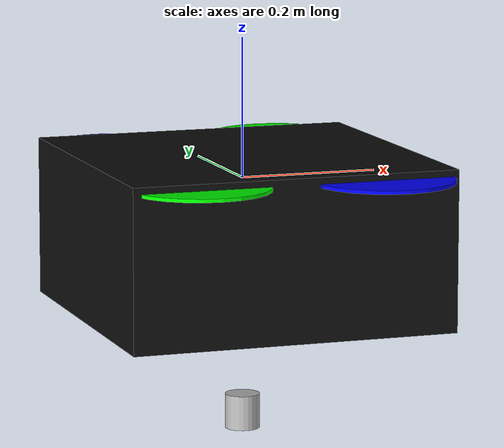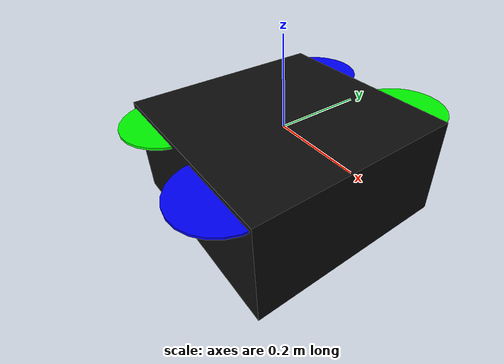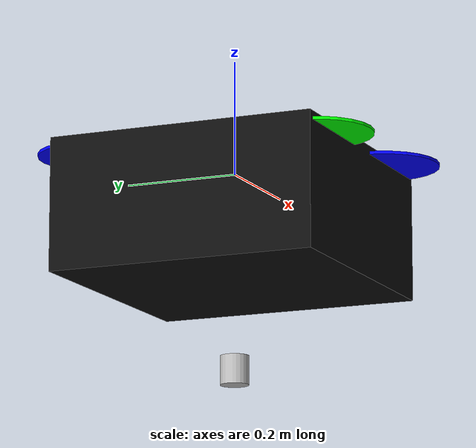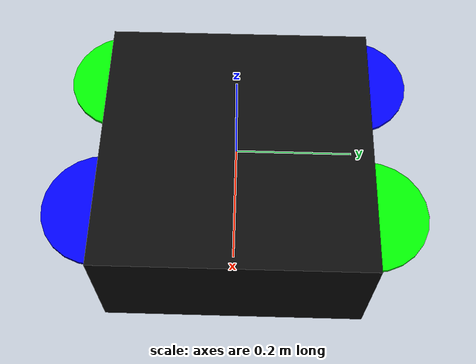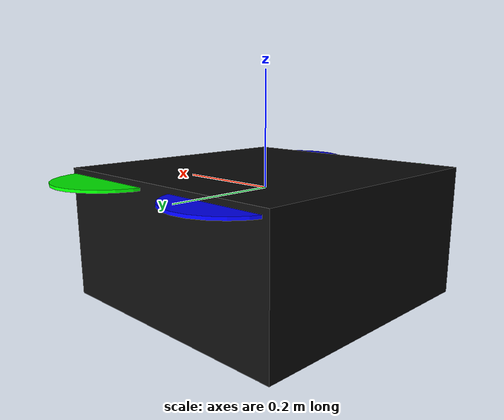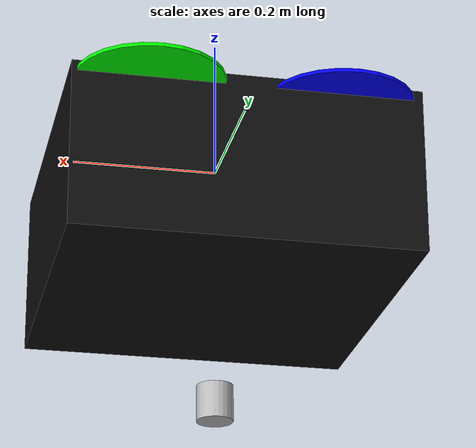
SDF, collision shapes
<?xml version='1.0'?>
<sdf version="1.9">
  <model name="iris_with_gimbal">
    <include>
      <uri>model://iris_with_standoffs2</uri>
    </include>

    <!-- plugins -->
    <plugin filename="gz-sim-joint-state-publisher-system"
      name="gz::sim::systems::JointStatePublisher">
    </plugin>
    <plugin filename="gz-sim-lift-drag-system"
        name="gz::sim::systems::LiftDrag">
      <a0>0.3</a0>
      <alpha_stall>1.4</alpha_stall>
      <cla>4.2500</cla>
      <cda>0.10</cda>
      <cma>0.0</cma>
      <cla_stall>-0.025</cla_stall>
      <cda_stall>0.0</cda_stall>
      <cma_stall>0.0</cma_stall>
      <area>0.002</area>
      <air_density>1.2041</air_density>
      <cp>0.084 0 0</cp>
      <forward>0 1 0</forward>
      <upward>0 0 1</upward>
      <link_name>iris_with_standoffs::rotor_0</link_name>
    </plugin>
    <plugin filename="gz-sim-lift-drag-system"
        name="gz::sim::systems::LiftDrag">
      <a0>0.3</a0>
      <alpha_stall>1.4</alpha_stall>
      <cla>4.2500</cla>
      <cda>0.10</cda>
      <cma>0.0</cma>
      <cla_stall>-0.025</cla_stall>
      <cda_stall>0.0</cda_stall>
      <cma_stall>0.0</cma_stall>
      <area>0.002</area>
      <air_density>1.2041</air_density>
      <cp>-0.084 0 0</cp>
      <forward>0 -1 0</forward>
      <upward>0 0 1</upward>
      <link_name>iris_with_standoffs::rotor_0</link_name>
    </plugin>

    <plugin filename="gz-sim-lift-drag-system"
        name="gz::sim::systems::LiftDrag">
      <a0>0.3</a0>
      <alpha_stall>1.4</alpha_stall>
      <cla>4.2500</cla>
      <cda>0.10</cda>
      <cma>0.0</cma>
      <cla_stall>-0.025</cla_stall>
      <cda_stall>0.0</cda_stall>
      <cma_stall>0.0</cma_stall>
      <area>0.002</area>
      <air_density>1.2041</air_density>
      <cp>0.084 0 0</cp>
      <forward>0 1 0</forward>
      <upward>0 0 1</upward>
      <link_name>iris_with_standoffs::rotor_1</link_name>
    </plugin>
    <plugin filename="gz-sim-lift-drag-system"
        name="gz::sim::systems::LiftDrag">
      <a0>0.3</a0>
      <alpha_stall>1.4</alpha_stall>
      <cla>4.2500</cla>
      <cda>0.10</cda>
      <cma>0.0</cma>
      <cla_stall>-0.025</cla_stall>
      <cda_stall>0.0</cda_stall>
      <cma_stall>0.0</cma_stall>
      <area>0.002</area>
      <air_density>1.2041</air_density>
      <cp>-0.084 0 0</cp>
      <forward>0 -1 0</forward>
      <upward>0 0 1</upward>
      <link_name>iris_with_standoffs::rotor_1</link_name>
    </plugin>

    <plugin filename="gz-sim-lift-drag-system"
        name="gz::sim::systems::LiftDrag">
      <a0>0.3</a0>
      <alpha_stall>1.4</alpha_stall>
      <cla>4.2500</cla>
      <cda>0.10</cda>
      <cma>0.0</cma>
      <cla_stall>-0.025</cla_stall>
      <cda_stall>0.0</cda_stall>
      <cma_stall>0.0</cma_stall>
      <area>0.002</area>
      <air_density>1.2041</air_density>
      <cp>0.084 0 0</cp>
      <forward>0 -1 0</forward>
      <upward>0 0 1</upward>
      <link_name>iris_with_standoffs::rotor_2</link_name>
    </plugin>
    <plugin filename="gz-sim-lift-drag-system"
        name="gz::sim::systems::LiftDrag">
      <a0>0.3</a0>
      <alpha_stall>1.4</alpha_stall>
      <cla>4.2500</cla>
      <cda>0.10</cda>
      <cma>0.0</cma>
      <cla_stall>-0.025</cla_stall>
      <cda_stall>0.0</cda_stall>
      <cma_stall>0.0</cma_stall>
      <area>0.002</area>
      <air_density>1.2041</air_density>
      <cp>-0.084 0 0</cp>
      <forward>0 1 0</forward>
      <upward>0 0 1</upward>
      <link_name>iris_with_standoffs::rotor_2</link_name>
    </plugin>

    <plugin filename="gz-sim-lift-drag-system"
        name="gz::sim::systems::LiftDrag">
      <a0>0.3</a0>
      <alpha_stall>1.4</alpha_stall>
      <cla>4.2500</cla>
      <cda>0.10</cda>
      <cma>0.0</cma>
      <cla_stall>-0.025</cla_stall>
      <cda_stall>0.0</cda_stall>
      <cma_stall>0.0</cma_stall>
      <area>0.002</area>
      <air_density>1.2041</air_density>
      <cp>0.084 0 0</cp>
      <forward>0 -1 0</forward>
      <upward>0 0 1</upward>
      <link_name>iris_with_standoffs::rotor_3</link_name>
    </plugin>
    <plugin filename="gz-sim-lift-drag-system"
        name="gz::sim::systems::LiftDrag">
      <a0>0.3</a0>
      <alpha_stall>1.4</alpha_stall>
      <cla>4.2500</cla>
      <cda>0.10</cda>
      <cma>0.0</cma>
      <cla_stall>-0.025</cla_stall>
      <cda_stall>0.0</cda_stall>
      <cma_stall>0.0</cma_stall>
      <area>0.002</area>
      <air_density>1.2041</air_density>
      <cp>-0.084 0 0</cp>
      <forward>0 1 0</forward>
      <upward>0 0 1</upward>
      <link_name>iris_with_standoffs::rotor_3</link_name>
    </plugin>

    <plugin filename="gz-sim-apply-joint-force-system"
      name="gz::sim::systems::ApplyJointForce">
      <joint_name>iris_with_standoffs::rotor_0_joint</joint_name>
    </plugin>
    <plugin filename="gz-sim-apply-joint-force-system"
      name="gz::sim::systems::ApplyJointForce">
      <joint_name>iris_with_standoffs::rotor_1_joint</joint_name>
    </plugin>
    <plugin filename="gz-sim-apply-joint-force-system"
      name="gz::sim::systems::ApplyJointForce">
      <joint_name>iris_with_standoffs::rotor_2_joint</joint_name>
    </plugin>
    <plugin filename="gz-sim-apply-joint-force-system"
      name="gz::sim::systems::ApplyJointForce">
      <joint_name>iris_with_standoffs::rotor_3_joint</joint_name>
    </plugin>

    <plugin name="ArduPilotPlugin"
      filename="ArduPilotPlugin">
      <!-- Port settings -->
      <fdm_addr>127.0.0.1</fdm_addr>
      <fdm_port_in>9002</fdm_port_in>
      <connectionTimeoutMaxCount>5</connectionTimeoutMaxCount>
      <lock_step>1</lock_step>

      <!-- Frame conventions
        Require by ArduPilot: change model and gazebo from XYZ to XY-Z coordinates
      -->
      <modelXYZToAirplaneXForwardZDown degrees="true">0 0 0 180 0 0</modelXYZToAirplaneXForwardZDown>
      <gazeboXYZToNED degrees="true">0 0 0 180 0 90</gazeboXYZToNED>

      <!-- Sensors -->
      <imuName>iris_with_standoffs::imu_link::imu_sensor</imuName>

      <!--
          incoming control command [0, 1]
          so offset it by 0 to get [0, 1]
          and divide max target by 1.
          offset = 0
          multiplier = 838 max rpm / 1 = 838
        -->
      <control channel="0">
        <jointName>iris_with_standoffs::rotor_0_joint</jointName>
        <useForce>1</useForce>
        <multiplier>838</multiplier>
        <offset>0</offset>
        <servo_min>1100</servo_min>
        <servo_max>1900</servo_max>
        <type>VELOCITY</type>
        <p_gain>0.20</p_gain>
        <i_gain>0</i_gain>
        <d_gain>0</d_gain>
        <i_max>0</i_max>
        <i_min>0</i_min>
        <cmd_max>2.5</cmd_max>
        <cmd_min>-2.5</cmd_min>
        <controlVelocitySlowdownSim>1</controlVelocitySlowdownSim>
      </control>

      <control channel="1">
        <jointName>iris_with_standoffs::rotor_1_joint</jointName>
        <useForce>1</useForce>
        <multiplier>838</multiplier>
        <offset>0</offset>
        <servo_min>1100</servo_min>
        <servo_max>1900</servo_max>
        <type>VELOCITY</type>
        <p_gain>0.20</p_gain>
        <i_gain>0</i_gain>
        <d_gain>0</d_gain>
        <i_max>0</i_max>
        <i_min>0</i_min>
        <cmd_max>2.5</cmd_max>
        <cmd_min>-2.5</cmd_min>
        <controlVelocitySlowdownSim>1</controlVelocitySlowdownSim>
      </control>

      <control channel="2">
        <jointName>iris_with_standoffs::rotor_2_joint</jointName>
        <useForce>1</useForce>
        <multiplier>-838</multiplier>
        <offset>0</offset>
        <servo_min>1100</servo_min>
        <servo_max>1900</servo_max>
        <type>VELOCITY</type>
        <p_gain>0.20</p_gain>
        <i_gain>0</i_gain>
        <d_gain>0</d_gain>
        <i_max>0</i_max>
        <i_min>0</i_min>
        <cmd_max>2.5</cmd_max>
        <cmd_min>-2.5</cmd_min>
        <controlVelocitySlowdownSim>1</controlVelocitySlowdownSim>
      </control>

      <control channel="3">
        <jointName>iris_with_standoffs::rotor_3_joint</jointName>
        <useForce>1</useForce>
        <multiplier>-838</multiplier>
        <offset>0</offset>
        <servo_min>1100</servo_min>
        <servo_max>1900</servo_max>
        <type>VELOCITY</type>
        <p_gain>0.20</p_gain>
        <i_gain>0</i_gain>
        <d_gain>0</d_gain>
        <i_max>0</i_max>
        <i_min>0</i_min>
        <cmd_max>2.5</cmd_max>
        <cmd_min>-2.5</cmd_min>
        <controlVelocitySlowdownSim>1</controlVelocitySlowdownSim>
      </control>

      <!-- roll range is -30 to +30 deg -->

      <!-- pitch range is -135 to +45 deg -->

    </plugin>

  </model>
</sdf>

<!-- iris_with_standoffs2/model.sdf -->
<sdf version='1.9'>
  <model name='iris_with_standoffs'>
    <pose>0 0 0 0 0 0</pose>
    <link name="camera_link_ball">
      <pose degrees="true">0 0 -0.32 0 180 0</pose>
      <inertial>
        <mass>0.001</mass>
        <inertia>
          <ixx>0.001</ixx>
          <ixy>0</ixy>
          <ixz>0</ixz>
          <iyy>0.001</iyy>
          <iyz>0</iyz>
          <izz>0.001</izz>
        </inertia>
      </inertial>
      <visual name="camera_visual">
        <pose>0 0 0.02 0 0 0</pose>
        <geometry>
          <cylinder>
            <radius>0.025</radius>
            <length>0.050</length>
          </cylinder>
        </geometry>
      </visual>
      <collision name="camera_collision">
        <pose>0 0 0.02 0 0 0</pose>
        <geometry>
          <cylinder>
            <radius>0.025</radius>
            <length>0.050</length>
          </cylinder>
        </geometry>
      </collision>
      <sensor name="camera_stabilized" type="camera">
        <pose degrees="True">0 0 0 0 -90 0</pose>
        <camera>
          <horizontal_fov>1.57</horizontal_fov>
          <image>
            <width>640</width>
            <height>480</height>
          </image>
          <clip>
            <near>0.05</near>
            <far>15000</far>
          </clip>
        </camera>
        <always_on>1</always_on>
        <update_rate>10</update_rate>
        <visualize>1</visualize>
      </sensor>
    </link>
    <link name="camera_link_fixed">
      <pose degrees="true">0 0 -0.32 0 180 0</pose>
      <inertial>
        <mass>0.001</mass>
        <inertia>
          <ixx>0.001</ixx>
          <ixy>0</ixy>
          <ixz>0</ixz>
          <iyy>0.0001</iyy>
          <iyz>0</iyz>
          <izz>0.001</izz>
        </inertia>
      </inertial>
      <collision name="camera_collision">
        <pose>0 0 0.02 0 0 0</pose>
        <geometry>
          <cylinder>
            <radius>0.025</radius>
            <length>0.050</length>
          </cylinder>
        </geometry>
      </collision>
      <sensor name="camera_fixed" type="camera">
        <pose degrees="True">0 0 0 0 -90 0</pose>
        <camera>
          <horizontal_fov>1.57</horizontal_fov>
          <image>
            <width>640</width>
            <height>480</height>
          </image>
          <clip>
            <near>0.05</near>
            <far>15000</far>
          </clip>
        </camera>
        <always_on>1</always_on>
        <update_rate>10</update_rate>
        <visualize>1</visualize>
      </sensor>
    </link>
    <joint name="camera_joint_ball" type="ball">
      <parent>base_link</parent>
      <child>camera_link_ball</child>
      <pose> 0 0 0 0 0 0</pose>
      <axis>
        <xyz>0 1 0</xyz>
        <limit>
          <lower>-1e+16</lower>
          <upper>1e+16</upper>
        </limit>
      </axis>
    </joint>
    <joint name="camera_joint_fixed" type="fixed">
      <parent>base_link</parent>
      <child>camera_link_fixed</child>
      <pose> 0 0 0 0 0 0</pose>
    </joint>
    <link name='base_link'>
      <velocity_decay>
        <linear>0.0</linear>
        <angular>0.0</angular>
      </velocity_decay>
      <inertial>
        <pose>0 0 0 0 0 0</pose>
        <mass>1.5</mass>
        <inertia>
          <ixx>0.008</ixx>
          <ixy>0</ixy>
          <ixz>0</ixz>
          <iyy>0.015</iyy>
          <iyz>0</iyz>
          <izz>0.017</izz>
        </inertia>
      </inertial>
      <collision name='base_collision'>
        <pose>0 0 -0.08 0 0 0</pose>
        <geometry>
          <box>
            <size>0.47 0.47 0.23</size>
          </box>
        </geometry>
        <surface>
          <contact>
            <ode>
              <max_vel>100.0</max_vel>
              <min_depth>0.001</min_depth>
            </ode>
          </contact>
          <friction>
            <ode>
              <mu>100000.0</mu>
              <mu2>100000.0</mu2>
            </ode>
          </friction>
        </surface>
      </collision>
      <visual name='base_visual'>
        <geometry>
          <mesh>
            <uri>model://iris_with_standoffs2/meshes/iris.dae</uri>
          </mesh>
        </geometry>
        <material>
          <ambient>0.05 0.05 0.05</ambient>
          <diffuse>0.05 0.05 0.05</diffuse>
          <specular>1 1 1 1</specular>
          <pbr>
            <metal>
              <metalness>0.5</metalness>
              <roughness>0.5</roughness>
            </metal>
          </pbr>
        </material>
      </visual>

      <visual name='front_left_leg_visual'>
        <pose>0.123 0.22 -0.11 0 0 0</pose>
        <geometry>
          <cylinder>
            <radius>0.005</radius>
            <length>0.17</length>
          </cylinder>
        </geometry>
        <material>
          <ambient>0.05 0.05 0.05</ambient>
          <diffuse>0.05 0.05 0.05</diffuse>
          <specular>0.01 0.01 0.01 1.0</specular>
          <pbr>
            <metal>
              <metalness>0.5</metalness>
              <roughness>0.5</roughness>
            </metal>
          </pbr>
        </material>
      </visual>
      <visual name='front_right_leg_visual'>
        <pose>0.123 -0.22 -0.11 0 0 0</pose>
        <geometry>
          <cylinder>
            <radius>0.005</radius>
            <length>0.17</length>
          </cylinder>
        </geometry>
        <material>
          <ambient>0.05 0.05 0.05</ambient>
          <diffuse>0.05 0.05 0.05</diffuse>
          <specular>0.01 0.01 0.01 1.0</specular>
          <pbr>
            <metal>
              <metalness>0.5</metalness>
              <roughness>0.5</roughness>
            </metal>
          </pbr>
        </material>
      </visual>
      <visual name='rear_left_leg_visual'>
        <pose>-0.140 0.21 -0.11 0 0 0</pose>
        <geometry>
          <cylinder>
            <radius>0.005</radius>
            <length>0.17</length>
          </cylinder>
        </geometry>
        <material>
          <ambient>0.05 0.05 0.05</ambient>
          <diffuse>0.05 0.05 0.05</diffuse>
          <specular>0.01 0.01 0.01 1.0</specular>
          <pbr>
            <metal>
              <metalness>0.5</metalness>
              <roughness>0.5</roughness>
            </metal>
          </pbr>
        </material>
      </visual>
      <visual name='rear_right_leg_visual'>
        <pose>-0.140 -0.21 -0.11 0 0 0</pose>
        <geometry>
          <cylinder>
            <radius>0.005</radius>
            <length>0.17</length>
          </cylinder>
        </geometry>
        <material>
          <ambient>0.05 0.05 0.05</ambient>
          <diffuse>0.05 0.05 0.05</diffuse>
          <specular>0.01 0.01 0.01 1.0</specular>
          <pbr>
            <metal>
              <metalness>0.5</metalness>
              <roughness>0.5</roughness>
            </metal>
          </pbr>
        </material>
      </visual>
    </link>
    <link name='imu_link'>
      <inertial>
        <pose>0 0 0 0 0 0</pose>
        <mass>0.15</mass>
        <inertia>
          <ixx>0.00001</ixx>
          <ixy>0</ixy>
          <ixz>0</ixz>
          <iyy>0.00002</iyy>
          <iyz>0</iyz>
          <izz>0.00002</izz>
        </inertia>
      </inertial>
      <sensor name="imu_sensor" type="imu">
        <pose degrees="true">0 0 0 180 0 0</pose>
        <always_on>1</always_on>
        <update_rate>1000.0</update_rate>
      </sensor>
    </link>
    <joint name='imu_joint' type='revolute'>
      <child>imu_link</child>
      <parent>base_link</parent>
      <axis>
        <xyz>0 0 1</xyz>
        <limit>
          <lower>0</lower>
          <upper>0</upper>
          <effort>0</effort>
          <velocity>0</velocity>
        </limit>
        <dynamics>
          <damping>1.0</damping>
        </dynamics>
      </axis>
    </joint>
    <link name='rotor_0'>
      <pose>0.13 -0.22 0.023 0 0 0</pose>
      <inertial>
        <pose>0 0 0 0 0 0</pose>
        <mass>0.025</mass>
        <inertia>
          <ixx>9.75e-06</ixx>
          <ixy>0</ixy>
          <ixz>0</ixz>
          <iyy>0.000166704</iyy>
          <iyz>0</iyz>
          <izz>0.000167604</izz>
        </inertia>
      </inertial>
      <collision name='rotor_0_collision'>
        <pose>0 0 0 0 0 0</pose>
        <geometry>
          <cylinder>
            <length>0.005</length>
            <radius>0.1</radius>
          </cylinder>
        </geometry>
        <surface>
          <contact>
            <ode/>
          </contact>
          <friction>
            <ode/>
          </friction>
        </surface>
      </collision>
      <visual name='rotor_0_visual'>
        <pose>0 0 0 0 0 0</pose>
        <geometry>
          <mesh>
            <scale>1 1 1</scale>
            <uri>model://iris_with_standoffs2/meshes/iris_prop_ccw.dae</uri>
          </mesh>
        </geometry>
        <material>
          <ambient>0 0 1</ambient>
          <diffuse>0 0 1</diffuse>
          <specular>1 1 1 1</specular>
          <pbr>
            <metal>
              <metalness>0.5</metalness>
              <roughness>0.5</roughness>
            </metal>
          </pbr>
        </material>
      </visual>
      <gravity>1</gravity>
      <velocity_decay/>
      <self_collide>0</self_collide>
    </link>
    <joint name='rotor_0_joint' type='revolute'>
      <child>rotor_0</child>
      <parent>base_link</parent>
      <axis>
        <xyz>0 0 1</xyz>
        <limit>
          <lower>-1e+16</lower>
          <upper>1e+16</upper>
        </limit>
        <dynamics>
          <damping>0.004</damping>
        </dynamics>
      </axis>
      <physics>
        <ode>
          <implicit_spring_damper>1</implicit_spring_damper>
        </ode>
      </physics>
    </joint>
    <link name='rotor_1'>
      <pose>-0.13 0.2 0.023 0 0 0</pose>
      <inertial>
        <pose>0 0 0 0 0 0</pose>
        <mass>0.025</mass>
        <inertia>
          <ixx>9.75e-06</ixx>
          <ixy>0</ixy>
          <ixz>0</ixz>
          <iyy>0.000166704</iyy>
          <iyz>0</iyz>
          <izz>0.000167604</izz>
        </inertia>
      </inertial>
      <collision name='rotor_1_collision'>
        <pose>0 0 0 0 0 0</pose>
        <geometry>
          <cylinder>
            <length>0.005</length>
            <radius>0.1</radius>
          </cylinder>
        </geometry>
        <surface>
          <contact>
            <ode/>
          </contact>
          <friction>
            <ode/>
          </friction>
        </surface>
      </collision>
      <visual name='rotor_1_visual'>
        <pose>0 0 0 0 0 0</pose>
        <geometry>
          <mesh>
            <scale>1 1 1</scale>
            <uri>model://iris_with_standoffs2/meshes/iris_prop_ccw.dae</uri>
          </mesh>
        </geometry>
        <material>
          <ambient>0 0 1 1</ambient>
          <diffuse>0 0 1 1</diffuse>
          <specular>1 1 1 1</specular>
          <pbr>
            <metal>
              <metalness>0.5</metalness>
              <roughness>0.5</roughness>
            </metal>
          </pbr>
        </material>
      </visual>
      <gravity>1</gravity>
      <velocity_decay/>
      <self_collide>0</self_collide>
    </link>
    <joint name='rotor_1_joint' type='revolute'>
      <child>rotor_1</child>
      <parent>base_link</parent>
      <axis>
        <xyz>0 0 1</xyz>
        <limit>
          <lower>-1e+16</lower>
          <upper>1e+16</upper>
        </limit>
        <dynamics>
          <damping>0.004</damping>
        </dynamics>
      </axis>
      <physics>
        <ode>
          <implicit_spring_damper>1</implicit_spring_damper>
        </ode>
      </physics>
    </joint>
    <link name='rotor_2'>
      <pose>0.13 0.22 0.023 0 0 0</pose>
      <inertial>
        <pose>0 0 0 0 0 0</pose>
        <mass>0.025</mass>
        <inertia>
          <ixx>9.75e-06</ixx>
          <ixy>0</ixy>
          <ixz>0</ixz>
          <iyy>0.000166704</iyy>
          <iyz>0</iyz>
          <izz>0.000167604</izz>
        </inertia>
      </inertial>
      <collision name='rotor_2_collision'>
        <pose>0 0 0 0 0 0</pose>
        <geometry>
          <cylinder>
            <length>0.005</length>
            <radius>0.1</radius>
          </cylinder>
        </geometry>
        <surface>
          <contact>
            <ode/>
          </contact>
          <friction>
            <ode/>
          </friction>
        </surface>
      </collision>
      <visual name='rotor_2_visual'>
        <pose>0 0 0 0 0 0</pose>
        <geometry>
          <mesh>
            <scale>1 1 1</scale>
            <uri>model://iris_with_standoffs2/meshes/iris_prop_cw.dae</uri>
          </mesh>
        </geometry>
        <material>
          <ambient>0 1 0</ambient>
          <diffuse>0 1 0</diffuse>
          <specular>1 1 1 1</specular>
          <pbr>
            <metal>
              <metalness>0.5</metalness>
              <roughness>0.5</roughness>
            </metal>
          </pbr>
        </material>
      </visual>
      <gravity>1</gravity>
      <velocity_decay/>
      <self_collide>0</self_collide>
    </link>
    <joint name='rotor_2_joint' type='revolute'>
      <child>rotor_2</child>
      <parent>base_link</parent>
      <axis>
        <xyz>0 0 1</xyz>
        <limit>
          <lower>-1e+16</lower>
          <upper>1e+16</upper>
        </limit>
        <dynamics>
          <damping>0.004</damping>
        </dynamics>
      </axis>
      <physics>
        <ode>
          <implicit_spring_damper>1</implicit_spring_damper>
        </ode>
      </physics>
    </joint>
    <link name='rotor_3'>
      <pose>-0.13 -0.2 0.023 0 0 0</pose>
      <inertial>
        <pose>0 0 0 0 0 0</pose>
        <mass>0.025</mass>
        <inertia>
          <ixx>9.75e-06</ixx>
          <ixy>0</ixy>
          <ixz>0</ixz>
          <iyy>0.000166704</iyy>
          <iyz>0</iyz>
          <izz>0.000167604</izz>
        </inertia>
      </inertial>
      <collision name='rotor_3_collision'>
        <pose>0 0 0 0 0 0</pose>
        <geometry>
          <cylinder>
            <length>0.005</length>
            <radius>0.1</radius>
          </cylinder>
        </geometry>
        <surface>
          <contact>
            <ode/>
          </contact>
          <friction>
            <ode/>
          </friction>
        </surface>
      </collision>
      <visual name='rotor_3_visual'>
        <pose>0 0 0 0 0 0</pose>
        <geometry>
          <mesh>
            <scale>1 1 1</scale>
            <uri>model://iris_with_standoffs2/meshes/iris_prop_cw.dae</uri>
          </mesh>
        </geometry>
        <material>
          <ambient>0 1 0</ambient>
          <diffuse>0 1 0</diffuse>
          <specular>1 1 1 1</specular>
          <pbr>
            <metal>
              <metalness>0.5</metalness>
              <roughness>0.5</roughness>
            </metal>
          </pbr>
        </material>
      </visual>
      <gravity>1</gravity>
      <velocity_decay/>
      <self_collide>0</self_collide>
    </link>
    <joint name='rotor_3_joint' type='revolute'>
      <child>rotor_3</child>
      <parent>base_link</parent>
      <axis>
        <xyz>0 0 1</xyz>
        <limit>
          <lower>-1e+16</lower>
          <upper>1e+16</upper>
        </limit>
        <dynamics>
          <damping>0.004</damping>
        </dynamics>
      </axis>
      <physics>
        <ode>
          <implicit_spring_damper>1</implicit_spring_damper>
        </ode>
      </physics>
    </joint>

  </model>
</sdf>
